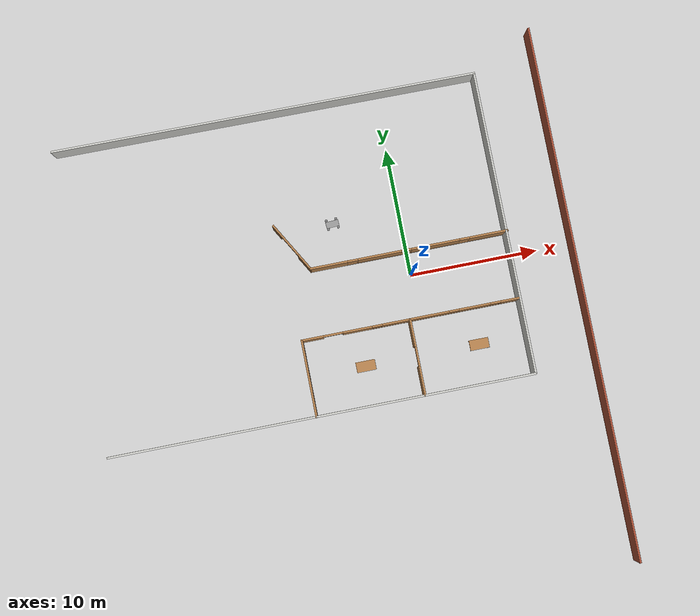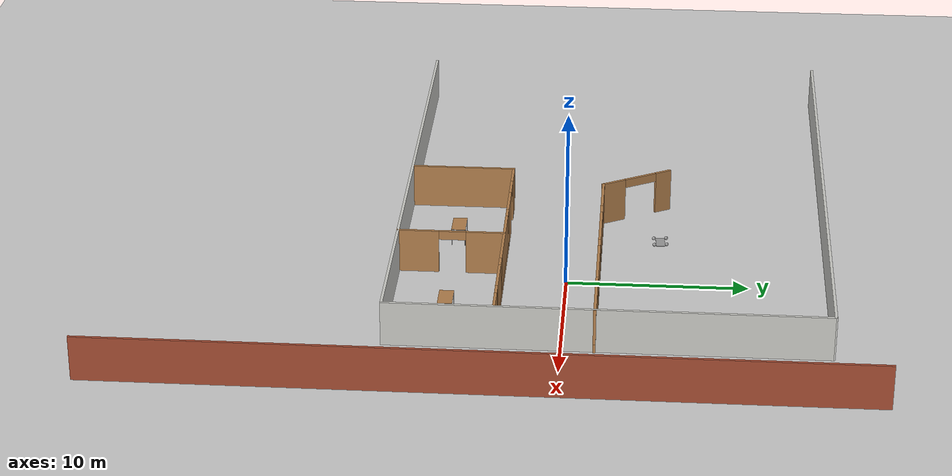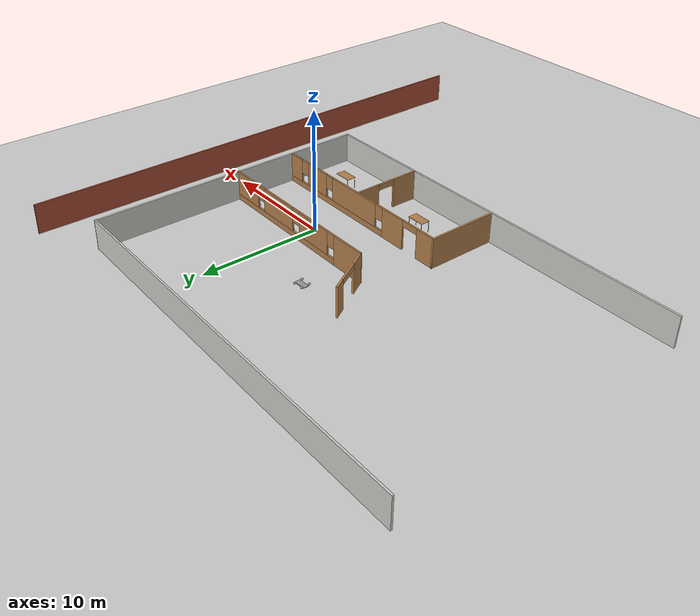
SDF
<sdf version="1.6">
 <world name="default">
  <model name="ground_plane">
   <static>1</static>
   <link name="link">
    <collision name="collision">
     <geometry><plane><normal>0 0 1</normal><size>100 100</size></plane></geometry>
     <surface>
      <contact><collide_bitmask>65535</collide_bitmask></contact>
      <friction><ode><mu>100</mu><mu2>50</mu2></ode></friction>
     </surface>
    </collision>
    <visual name="visual">
     <cast_shadows>0</cast_shadows>
     <geometry><plane><normal>0 0 1</normal><size>100 100</size></plane></geometry>
     <material>
      <script><uri>file://media/materials/scripts/gazebo.material</uri><name>Gazebo/Grey</name></script>
     </material>
    </visual>
   </link>
  </model>
  <model name="bigHouse">
   <pose>-26.8831 -3.8622 0 0 -0 0</pose>
   <link name="Wall_13">
    <pose>26.0111 0.377542 0 0 -0 0</pose>
    <visual name="Wall_13_Visual_0">
     <pose>-7.61414 0 1.25 0 -0 0</pose>
     <geometry><box><size>1.77173 0.15 2.5</size></box></geometry>
     <material>
      <script><uri>file://media/materials/scripts/gazebo.material</uri><name>Gazebo/Wood</name></script>
      <ambient>1 1 1 1</ambient>
     </material>
     <meta><layer>0</layer></meta>
    </visual>
    <collision name="Wall_13_Collision_0">
     <geometry><box><size>1.77173 0.15 2.5</size></box></geometry>
     <pose>-7.61414 0 1.25 0 -0 0</pose>
    </collision>
    <visual name="Wall_13_Visual_1">
     <pose>-4.09432 0 1.25 0 -0 0</pose>
     <geometry><box><size>2.2679 0.15 2.5</size></box></geometry>
     <material>
      <script><uri>file://media/materials/scripts/gazebo.material</uri><name>Gazebo/Wood</name></script>
      <ambient>1 1 1 1</ambient>
     </material>
     <meta><layer>0</layer></meta>
    </visual>
    <collision name="Wall_13_Collision_1">
     <geometry><box><size>2.2679 0.15 2.5</size></box></geometry>
     <pose>-4.09432 0 1.25 0 -0 0</pose>
    </collision>
    <visual name="Wall_13_Visual_2">
     <pose>2.76981 0 0.25 0 -0 0</pose>
     <geometry><box><size>11.4604 0.15 0.5</size></box></geometry>
     <material>
      <script><uri>file://media/materials/scripts/gazebo.material</uri><name>Gazebo/Wood</name></script>
      <ambient>1 1 1 1</ambient>
     </material>
     <meta><layer>0</layer></meta>
    </visual>
    <collision name="Wall_13_Collision_2">
     <geometry><box><size>11.4604 0.15 0.5</size></box></geometry>
     <pose>2.76981 0 0.25 0 -0 0</pose>
    </collision>
    <visual name="Wall_13_Visual_3">
     <pose>0.433338 0 1.5 0 -0 0</pose>
     <geometry><box><size>5.18743 0.15 2</size></box></geometry>
     <material>
      <script><uri>file://media/materials/scripts/gazebo.material</uri><name>Gazebo/Wood</name></script>
      <ambient>1 1 1 1</ambient>
     </material>
     <meta><layer>0</layer></meta>
    </visual>
    <collision name="Wall_13_Collision_3">
     <geometry><box><size>5.18743 0.15 2</size></box></geometry>
     <pose>0.433338 0 1.5 0 -0 0</pose>
    </collision>
    <visual name="Wall_13_Visual_4">
     <pose>5.04527 0 1.5 0 -0 0</pose>
     <geometry><box><size>2.43645 0.15 2</size></box></geometry>
     <material>
      <script><uri>file://media/materials/scripts/gazebo.material</uri><name>Gazebo/Wood</name></script>
      <ambient>1 1 1 1</ambient>
     </material>
     <meta><layer>0</layer></meta>
    </visual>
    <collision name="Wall_13_Collision_4">
     <geometry><box><size>2.43645 0.15 2</size></box></geometry>
     <pose>5.04527 0 1.5 0 -0 0</pose>
    </collision>
    <visual name="Wall_13_Visual_5">
     <pose>7.78175 0 1.5 0 -0 0</pose>
     <geometry><box><size>1.4365 0.15 2</size></box></geometry>
     <material>
      <script><uri>file://media/materials/scripts/gazebo.material</uri><name>Gazebo/Wood</name></script>
      <ambient>1 1 1 1</ambient>
     </material>
     <meta><layer>0</layer></meta>
    </visual>
    <collision name="Wall_13_Collision_5">
     <geometry><box><size>1.4365 0.15 2</size></box></geometry>
     <pose>7.78175 0 1.5 0 -0 0</pose>
    </collision>
    <visual name="Wall_13_Visual_6">
     <pose>-2.56038 0 1.9 0 -0 0</pose>
     <geometry><box><size>0.8 0.15 1.2</size></box></geometry>
     <material>
      <script><uri>file://media/materials/scripts/gazebo.material</uri><name>Gazebo/Wood</name></script>
      <ambient>1 1 1 1</ambient>
     </material>
     <meta><layer>0</layer></meta>
    </visual>
    <collision name="Wall_13_Collision_6">
     <geometry><box><size>0.8 0.15 1.2</size></box></geometry>
     <pose>-2.56038 0 1.9 0 -0 0</pose>
    </collision>
    <visual name="Wall_13_Visual_7">
     <pose>3.42705 0 1.9 0 -0 0</pose>
     <geometry><box><size>0.8 0.15 1.2</size></box></geometry>
     <material>
      <script><uri>file://media/materials/scripts/gazebo.material</uri><name>Gazebo/Wood</name></script>
      <ambient>1 1 1 1</ambient>
     </material>
     <meta><layer>0</layer></meta>
    </visual>
    <collision name="Wall_13_Collision_7">
     <geometry><box><size>0.8 0.15 1.2</size></box></geometry>
     <pose>3.42705 0 1.9 0 -0 0</pose>
    </collision>
    <visual name="Wall_13_Visual_8">
     <pose>6.6635 0 1.9 0 -0 0</pose>
     <geometry><box><size>0.8 0.15 1.2</size></box></geometry>
     <material>
      <script><uri>file://media/materials/scripts/gazebo.material</uri><name>Gazebo/Wood</name></script>
      <ambient>1 1 1 1</ambient>
     </material>
     <meta><layer>0</layer></meta>
    </visual>
    <collision name="Wall_13_Collision_8">
     <geometry><box><size>0.8 0.15 1.2</size></box></geometry>
     <pose>6.6635 0 1.9 0 -0 0</pose>
    </collision>
    <visual name="Wall_13_Visual_9">
     <pose>-5.97827 0 2.25 0 -0 0</pose>
     <geometry><box><size>1.5 0.15 0.5</size></box></geometry>
     <material>
      <script><uri>file://media/materials/scripts/gazebo.material</uri><name>Gazebo/Wood</name></script>
      <ambient>1 1 1 1</ambient>
     </material>
     <meta><layer>0</layer></meta>
    </visual>
    <collision name="Wall_13_Collision_9">
     <geometry><box><size>1.5 0.15 0.5</size></box></geometry>
     <pose>-5.97827 0 2.25 0 -0 0</pose>
    </collision>
   </link>
   <link name="Wall_15">
    <collision name="Wall_15_Collision">
     <geometry><box><size>6.06003 0.15 2.5</size></box></geometry>
     <pose>0 0 1.25 0 -0 0</pose>
    </collision>
    <visual name="Wall_15_Visual">
     <pose>0 0 1.25 0 -0 0</pose>
     <geometry><box><size>6.06003 0.15 2.5</size></box></geometry>
     <material>
      <script><uri>file://media/materials/scripts/gazebo.material</uri><name>Gazebo/Wood</name></script>
      <ambient>1 1 1 1</ambient>
     </material>
     <meta><layer>0</layer></meta>
    </visual>
    <pose>17.5861 -2.57747 0 0 -0 1.5708</pose>
   </link>
   <link name="Wall_18">
    <pose>18.2159 7.5266 0 0 0 -1.0472</pose>
    <visual name="Wall_18_Visual_0">
     <pose>-1.74861 0 1.25 0 -0 0</pose>
     <geometry><box><size>1.00278 0.15 2.5</size></box></geometry>
     <material>
      <script><uri>file://media/materials/scripts/gazebo.material</uri><name>Gazebo/Wood</name></script>
      <ambient>1 1 1 1</ambient>
     </material>
     <meta><layer>0</layer></meta>
    </visual>
    <collision name="Wall_18_Collision_0">
     <geometry><box><size>1.00278 0.15 2.5</size></box></geometry>
     <pose>-1.74861 0 1.25 0 -0 0</pose>
    </collision>
    <visual name="Wall_18_Visual_1">
     <pose>1.50139 0 1.25 0 -0 0</pose>
     <geometry><box><size>1.49722 0.15 2.5</size></box></geometry>
     <material>
      <script><uri>file://media/materials/scripts/gazebo.material</uri><name>Gazebo/Wood</name></script>
      <ambient>1 1 1 1</ambient>
     </material>
     <meta><layer>0</layer></meta>
    </visual>
    <collision name="Wall_18_Collision_1">
     <geometry><box><size>1.49722 0.15 2.5</size></box></geometry>
     <pose>1.50139 0 1.25 0 -0 0</pose>
    </collision>
    <visual name="Wall_18_Visual_2">
     <pose>-0.247217 0 2.25 0 -0 0</pose>
     <geometry><box><size>2 0.15 0.5</size></box></geometry>
     <material>
      <script><uri>file://media/materials/scripts/gazebo.material</uri><name>Gazebo/Wood</name></script>
      <ambient>1 1 1 1</ambient>
     </material>
     <meta><layer>0</layer></meta>
    </visual>
    <collision name="Wall_18_Collision_2">
     <geometry><box><size>2 0.15 0.5</size></box></geometry>
     <pose>-0.247217 0 2.25 0 -0 0</pose>
    </collision>
   </link>
   <link name="Wall_19">
    <pose>26.9784 5.643 0 0 -0 0</pose>
    <visual name="Wall_19_Visual_0">
     <pose>-6.27032 0 1.25 0 -0 0</pose>
     <geometry><box><size>2.95935 0.15 2.5</size></box></geometry>
     <material>
      <script><uri>file://media/materials/scripts/gazebo.material</uri><name>Gazebo/Wood</name></script>
      <ambient>1 1 1 1</ambient>
     </material>
     <meta><layer>0</layer></meta>
    </visual>
    <collision name="Wall_19_Collision_0">
     <geometry><box><size>2.95935 0.15 2.5</size></box></geometry>
     <pose>-6.27032 0 1.25 0 -0 0</pose>
    </collision>
    <visual name="Wall_19_Visual_1">
     <pose>1.47968 0 0.25 0 -0 0</pose>
     <geometry><box><size>12.5406 0.15 0.5</size></box></geometry>
     <material>
      <script><uri>file://media/materials/scripts/gazebo.material</uri><name>Gazebo/Wood</name></script>
      <ambient>1 1 1 1</ambient>
     </material>
     <meta><layer>0</layer></meta>
    </visual>
    <collision name="Wall_19_Collision_1">
     <geometry><box><size>12.5406 0.15 0.5</size></box></geometry>
     <pose>1.47968 0 0.25 0 -0 0</pose>
    </collision>
    <visual name="Wall_19_Visual_2">
     <pose>-2.28696 0 1.5 0 -0 0</pose>
     <geometry><box><size>3.40738 0.15 2</size></box></geometry>
     <material>
      <script><uri>file://media/materials/scripts/gazebo.material</uri><name>Gazebo/Wood</name></script>
      <ambient>1 1 1 1</ambient>
     </material>
     <meta><layer>0</layer></meta>
    </visual>
    <collision name="Wall_19_Collision_2">
     <geometry><box><size>3.40738 0.15 2</size></box></geometry>
     <pose>-2.28696 0 1.5 0 -0 0</pose>
    </collision>
    <visual name="Wall_19_Visual_3">
     <pose>2.08224 0 1.5 0 -0 0</pose>
     <geometry><box><size>3.73102 0.15 2</size></box></geometry>
     <material>
      <script><uri>file://media/materials/scripts/gazebo.material</uri><name>Gazebo/Wood</name></script>
      <ambient>1 1 1 1</ambient>
     </material>
     <meta><layer>0</layer></meta>
    </visual>
    <collision name="Wall_19_Collision_3">
     <geometry><box><size>3.73102 0.15 2</size></box></geometry>
     <pose>2.08224 0 1.5 0 -0 0</pose>
    </collision>
    <visual name="Wall_19_Visual_4">
     <pose>6.24888 0 1.5 0 -0 0</pose>
     <geometry><box><size>3.00224 0.15 2</size></box></geometry>
     <material>
      <script><uri>file://media/materials/scripts/gazebo.material</uri><name>Gazebo/Wood</name></script>
      <ambient>1 1 1 1</ambient>
     </material>
     <meta><layer>0</layer></meta>
    </visual>
    <collision name="Wall_19_Collision_4">
     <geometry><box><size>3.00224 0.15 2</size></box></geometry>
     <pose>6.24888 0 1.5 0 -0 0</pose>
    </collision>
    <visual name="Wall_19_Visual_5">
     <pose>-4.39065 0 1.9 0 -0 0</pose>
     <geometry><box><size>0.8 0.15 1.2</size></box></geometry>
     <material>
      <script><uri>file://media/materials/scripts/gazebo.material</uri><name>Gazebo/Wood</name></script>
      <ambient>1 1 1 1</ambient>
     </material>
     <meta><layer>0</layer></meta>
    </visual>
    <collision name="Wall_19_Collision_5">
     <geometry><box><size>0.8 0.15 1.2</size></box></geometry>
     <pose>-4.39065 0 1.9 0 -0 0</pose>
    </collision>
    <visual name="Wall_19_Visual_6">
     <pose>-0.183267 0 1.9 0 -0 0</pose>
     <geometry><box><size>0.8 0.15 1.2</size></box></geometry>
     <material>
      <script><uri>file://media/materials/scripts/gazebo.material</uri><name>Gazebo/Wood</name></script>
      <ambient>1 1 1 1</ambient>
     </material>
     <meta><layer>0</layer></meta>
    </visual>
    <collision name="Wall_19_Collision_6">
     <geometry><box><size>0.8 0.15 1.2</size></box></geometry>
     <pose>-0.183267 0 1.9 0 -0 0</pose>
    </collision>
    <visual name="Wall_19_Visual_7">
     <pose>4.34776 0 1.9 0 -0 0</pose>
     <geometry><box><size>0.8 0.15 1.2</size></box></geometry>
     <material>
      <script><uri>file://media/materials/scripts/gazebo.material</uri><name>Gazebo/Wood</name></script>
      <ambient>1 1 1 1</ambient>
     </material>
     <meta><layer>0</layer></meta>
    </visual>
    <collision name="Wall_19_Collision_7">
     <geometry><box><size>0.8 0.15 1.2</size></box></geometry>
     <pose>4.34776 0 1.9 0 -0 0</pose>
    </collision>
   </link>
   <link name="Wall_2">
    <collision name="Wall_2_Collision">
     <geometry><box><size>41.75 0.15 2.5</size></box></geometry>
     <pose>0 0 1.25 0 -0 0</pose>
    </collision>
    <visual name="Wall_2_Visual">
     <pose>0 0 1.25 0 -0 0</pose>
     <geometry><box><size>41.75 0.15 2.5</size></box></geometry>
     <material>
      <script><uri>file://media/materials/scripts/gazebo.material</uri><name>Gazebo/Bricks</name></script>
      <ambient>1 1 1 1</ambient>
     </material>
     <meta><layer>0</layer></meta>
    </visual>
    <pose>39.425 -0.125117 0 0 -0 1.5708</pose>
   </link>
   <link name="Wall_21">
    <pose>26.016 -2.57919 0 0 0 -1.5708</pose>
    <visual name="Wall_21_Visual_0">
     <pose>-1.91882 0 1.25 0 -0 0</pose>
     <geometry><box><size>2.16235 0.15 2.5</size></box></geometry>
     <material>
      <script><uri>file://media/materials/scripts/gazebo.material</uri><name>Gazebo/Wood</name></script>
      <ambient>1 1 1 1</ambient>
     </material>
     <meta><layer>0</layer></meta>
    </visual>
    <collision name="Wall_21_Collision_0">
     <geometry><box><size>2.16235 0.15 2.5</size></box></geometry>
     <pose>-1.91882 0 1.25 0 -0 0</pose>
    </collision>
    <visual name="Wall_21_Visual_1">
     <pose>1.83118 0 1.25 0 -0 0</pose>
     <geometry><box><size>2.33765 0.15 2.5</size></box></geometry>
     <material>
      <script><uri>file://media/materials/scripts/gazebo.material</uri><name>Gazebo/Wood</name></script>
      <ambient>1 1 1 1</ambient>
     </material>
     <meta><layer>0</layer></meta>
    </visual>
    <collision name="Wall_21_Collision_1">
     <geometry><box><size>2.33765 0.15 2.5</size></box></geometry>
     <pose>1.83118 0 1.25 0 -0 0</pose>
    </collision>
    <visual name="Wall_21_Visual_2">
     <pose>-0.087646 0 2.25 0 -0 0</pose>
     <geometry><box><size>1.5 0.15 0.5</size></box></geometry>
     <material>
      <script><uri>file://media/materials/scripts/gazebo.material</uri><name>Gazebo/Wood</name></script>
      <ambient>1 1 1 1</ambient>
     </material>
     <meta><layer>0</layer></meta>
    </visual>
    <collision name="Wall_21_Collision_2">
     <geometry><box><size>1.5 0.15 0.5</size></box></geometry>
     <pose>-0.087646 0 2.25 0 -0 0</pose>
    </collision>
   </link>
   <link name="Wall_6">
    <collision name="Wall_6_Collision">
     <geometry><box><size>33.25 0.15 2.5</size></box></geometry>
     <pose>0 0 1.25 0 -0 0</pose>
    </collision>
    <visual name="Wall_6_Visual">
     <pose>0 0 1.25 0 -0 0</pose>
     <geometry><box><size>33.25 0.15 2.5</size></box></geometry>
     <material>
      <script><uri>file://media/materials/scripts/gazebo.material</uri><name>Gazebo/CeilingTiled</name></script>
      <ambient>1 1 1 1</ambient>
     </material>
     <meta><layer>0</layer></meta>
    </visual>
    <pose>18.0322 -5.51252 0 0 -0 0</pose>
   </link>
   <link name="Wall_7">
    <collision name="Wall_7_Collision">
     <geometry><box><size>23.75 0.15 2.5</size></box></geometry>
     <pose>0 0 1.25 0 -0 0</pose>
    </collision>
    <visual name="Wall_7_Visual">
     <pose>0 0 1.25 0 -0 0</pose>
     <geometry><box><size>23.75 0.15 2.5</size></box></geometry>
     <material>
      <script><uri>file://media/materials/scripts/gazebo.material</uri><name>Gazebo/CeilingTiled</name></script>
      <ambient>1 1 1 1</ambient>
     </material>
     <meta><layer>0</layer></meta>
    </visual>
    <pose>34.5822 6.28748 0 0 -0 1.5708</pose>
   </link>
   <link name="Wall_8">
    <collision name="Wall_8_Collision">
     <geometry><box><size>33.2509 0.15 2.5</size></box></geometry>
     <pose>0 0 1.25 0 -0 0</pose>
    </collision>
    <visual name="Wall_8_Visual">
     <pose>0 0 1.25 0 -0 0</pose>
     <geometry><box><size>33.2509 0.15 2.5</size></box></geometry>
     <material>
      <script><uri>file://media/materials/scripts/gazebo.material</uri><name>Gazebo/CeilingTiled</name></script>
      <ambient>1 1 1 1</ambient>
     </material>
     <meta><layer>0</layer></meta>
    </visual>
    <pose>18.0322 18.2125 0 0 -0 3.13404</pose>
   </link>
   <static>1</static>
  </model>
  <model name="table">
   <static>1</static>
   <link name="link">
    <collision name="surface">
     <pose>0 0 1 0 -0 0</pose>
     <geometry><box><size>1.5 0.8 0.03</size></box></geometry>
     <surface><friction><ode><mu>0.6</mu><mu2>0.6</mu2></ode></friction></surface>
    </collision>
    <visual name="visual1">
     <pose>0 0 1 0 -0 0</pose>
     <geometry><box><size>1.5 0.8 0.03</size></box></geometry>
     <material>
      <script><uri>file://media/materials/scripts/gazebo.material</uri><name>Gazebo/Wood</name></script>
     </material>
    </visual>
    <collision name="front_left_leg">
     <pose>0.68 0.38 0.5 0 -0 0</pose>
     <geometry><cylinder><radius>0.02</radius><length>1</length></cylinder></geometry>
    </collision>
    <visual name="front_left_leg">
     <pose>0.68 0.38 0.5 0 -0 0</pose>
     <geometry><cylinder><radius>0.02</radius><length>1</length></cylinder></geometry>
     <material>
      <script><uri>file://media/materials/scripts/gazebo.material</uri><name>Gazebo/Grey</name></script>
     </material>
    </visual>
    <collision name="front_right_leg">
     <pose>0.68 -0.38 0.5 0 -0 0</pose>
     <geometry><cylinder><radius>0.02</radius><length>1</length></cylinder></geometry>
    </collision>
    <visual name="front_right_leg">
     <pose>0.68 -0.38 0.5 0 -0 0</pose>
     <geometry><cylinder><radius>0.02</radius><length>1</length></cylinder></geometry>
     <material>
      <script><uri>file://media/materials/scripts/gazebo.material</uri><name>Gazebo/Grey</name></script>
     </material>
    </visual>
    <collision name="back_right_leg">
     <pose>-0.68 -0.38 0.5 0 -0 0</pose>
     <geometry><cylinder><radius>0.02</radius><length>1</length></cylinder></geometry>
    </collision>
    <visual name="back_right_leg">
     <pose>-0.68 -0.38 0.5 0 -0 0</pose>
     <geometry><cylinder><radius>0.02</radius><length>1</length></cylinder></geometry>
     <material>
      <script><uri>file://media/materials/scripts/gazebo.material</uri><name>Gazebo/Grey</name></script>
     </material>
    </visual>
    <collision name="back_left_leg">
     <pose>-0.68 0.38 0.5 0 -0 0</pose>
     <geometry><cylinder><radius>0.02</radius><length>1</length></cylinder></geometry>
    </collision>
    <visual name="back_left_leg">
     <pose>-0.68 0.38 0.5 0 -0 0</pose>
     <geometry><cylinder><radius>0.02</radius><length>1</length></cylinder></geometry>
     <material>
      <script><uri>file://media/materials/scripts/gazebo.material</uri><name>Gazebo/Grey</name></script>
     </material>
    </visual>
   </link>
   <pose>-4.83759 -6.28912 0 0 -0 0</pose>
  </model>
  <model name="table_0">
   <static>1</static>
   <link name="link">
    <collision name="surface">
     <pose>0 0 1 0 -0 0</pose>
     <geometry><box><size>1.5 0.8 0.03</size></box></geometry>
     <surface><friction><ode><mu>0.6</mu><mu2>0.6</mu2></ode></friction></surface>
    </collision>
    <visual name="visual1">
     <pose>0 0 1 0 -0 0</pose>
     <geometry><box><size>1.5 0.8 0.03</size></box></geometry>
     <material>
      <script><uri>file://media/materials/scripts/gazebo.material</uri><name>Gazebo/Wood</name></script>
     </material>
    </visual>
    <collision name="front_left_leg">
     <pose>0.68 0.38 0.5 0 -0 0</pose>
     <geometry><cylinder><radius>0.02</radius><length>1</length></cylinder></geometry>
    </collision>
    <visual name="front_left_leg">
     <pose>0.68 0.38 0.5 0 -0 0</pose>
     <geometry><cylinder><radius>0.02</radius><length>1</length></cylinder></geometry>
     <material>
      <script><uri>file://media/materials/scripts/gazebo.material</uri><name>Gazebo/Grey</name></script>
     </material>
    </visual>
    <collision name="front_right_leg">
     <pose>0.68 -0.38 0.5 0 -0 0</pose>
     <geometry><cylinder><radius>0.02</radius><length>1</length></cylinder></geometry>
    </collision>
    <visual name="front_right_leg">
     <pose>0.68 -0.38 0.5 0 -0 0</pose>
     <geometry><cylinder><radius>0.02</radius><length>1</length></cylinder></geometry>
     <material>
      <script><uri>file://media/materials/scripts/gazebo.material</uri><name>Gazebo/Grey</name></script>
     </material>
    </visual>
    <collision name="back_right_leg">
     <pose>-0.68 -0.38 0.5 0 -0 0</pose>
     <geometry><cylinder><radius>0.02</radius><length>1</length></cylinder></geometry>
    </collision>
    <visual name="back_right_leg">
     <pose>-0.68 -0.38 0.5 0 -0 0</pose>
     <geometry><cylinder><radius>0.02</radius><length>1</length></cylinder></geometry>
     <material>
      <script><uri>file://media/materials/scripts/gazebo.material</uri><name>Gazebo/Grey</name></script>
     </material>
    </visual>
    <collision name="back_left_leg">
     <pose>-0.68 0.38 0.5 0 -0 0</pose>
     <geometry><cylinder><radius>0.02</radius><length>1</length></cylinder></geometry>
    </collision>
    <visual name="back_left_leg">
     <pose>-0.68 0.38 0.5 0 -0 0</pose>
     <geometry><cylinder><radius>0.02</radius><length>1</length></cylinder></geometry>
     <material>
      <script><uri>file://media/materials/scripts/gazebo.material</uri><name>Gazebo/Grey</name></script>
     </material>
    </visual>
   </link>
   <pose>4.05808 -6.31232 0 0 -0 0</pose>
  </model>
  <model name="funkybot_0">
   <link name="link_0">
    <pose>0.008 0 -0.042 0 -0 0</pose>
    <inertial>
     <mass>1</mass>
     <inertia>
      <ixx>0.166667</ixx>
      <ixy>0</ixy>
      <ixz>0</ixz>
      <iyy>0.166667</iyy>
      <iyz>0</iyz>
      <izz>0.166667</izz>
     </inertia>
    </inertial>
    <visual name="visual">
     <geometry><box><size>1 0.5 0.05</size></box></geometry>
     <material>
      <lighting>1</lighting>
      <script><uri>file://media/materials/scripts/gazebo.material</uri><name>Gazebo/Grey</name></script>
      <shader type="pixel"><normal_map>__default__</normal_map></shader>
      <ambient>0.3 0.3 0.3 1</ambient>
      <diffuse>0.7 0.7 0.7 1</diffuse>
      <specular>0.01 0.01 0.01 1</specular>
      <emissive>0 0 0 1</emissive>
     </material>
    </visual>
    <collision name="collision">
     <geometry><box><size>1 0.5 0.05</size></box></geometry>
     <surface>
      <friction>
       <ode><mu>1</mu><mu2>1</mu2><fdir1>0 0 0</fdir1><slip1>0</slip1><slip2>0</slip2></ode>
       <torsional>
        <coefficient>1</coefficient>
        <patch_radius>0</patch_radius>
        <surface_radius>0</surface_radius>
        <use_patch_radius>1</use_patch_radius>
        <ode><slip>0</slip></ode>
       </torsional>
      </friction>
      <bounce><restitution_coefficient>0</restitution_coefficient><threshold>1e+06</threshold></bounce>
      <contact>
       <collide_without_contact>0</collide_without_contact>
       <collide_without_contact_bitmask>1</collide_without_contact_bitmask>
       <collide_bitmask>1</collide_bitmask>
       <ode>
        <soft_cfm>0</soft_cfm>
        <soft_erp>0.2</soft_erp>
        <kp>1e+13</kp>
        <kd>1</kd>
        <max_vel>0.01</max_vel>
        <min_depth>0</min_depth>
       </ode>
       <bullet>
        <split_impulse>1</split_impulse>
        <split_impulse_penetration_threshold>-0.01</split_impulse_penetration_threshold>
        <soft_cfm>0</soft_cfm>
        <soft_erp>0.2</soft_erp>
        <kp>1e+13</kp>
        <kd>1</kd>
       </bullet>
      </contact>
     </surface>
    </collision>
   </link>
   <link name="link_2">
    <pose>0.368 0.35 -0.0045 0 -0 0</pose>
    <inertial>
     <mass>1</mass>
     <inertia><ixx>0.1</ixx><ixy>0</ixy><ixz>0</ixz><iyy>0.1</iyy><iyz>0</iyz><izz>0.1</izz></inertia>
    </inertial>
    <visual name="visual">
     <geometry><sphere><radius>0.1</radius></sphere></geometry>
     <material>
      <lighting>1</lighting>
      <script><uri>file://media/materials/scripts/gazebo.material</uri><name>Gazebo/Grey</name></script>
      <shader type="pixel"><normal_map>__default__</normal_map></shader>
      <ambient>0.3 0.3 0.3 1</ambient>
      <diffuse>0.7 0.7 0.7 1</diffuse>
      <specular>0.01 0.01 0.01 1</specular>
      <emissive>0 0 0 1</emissive>
     </material>
    </visual>
    <collision name="collision">
     <geometry><sphere><radius>0.1</radius></sphere></geometry>
     <surface>
      <friction>
       <ode><mu>1</mu><mu2>1</mu2><fdir1>0 0 0</fdir1><slip1>0</slip1><slip2>0</slip2></ode>
       <torsional>
        <coefficient>1</coefficient>
        <patch_radius>0</patch_radius>
        <surface_radius>0</surface_radius>
        <use_patch_radius>1</use_patch_radius>
        <ode><slip>0</slip></ode>
       </torsional>
      </friction>
      <bounce><restitution_coefficient>0</restitution_coefficient><threshold>1e+06</threshold></bounce>
      <contact>
       <collide_without_contact>0</collide_without_contact>
       <collide_without_contact_bitmask>1</collide_without_contact_bitmask>
       <collide_bitmask>1</collide_bitmask>
       <ode>
        <soft_cfm>0</soft_cfm>
        <soft_erp>0.2</soft_erp>
        <kp>1e+13</kp>
        <kd>1</kd>
        <max_vel>0.01</max_vel>
        <min_depth>0</min_depth>
       </ode>
       <bullet>
        <split_impulse>1</split_impulse>
        <split_impulse_penetration_threshold>-0.01</split_impulse_penetration_threshold>
        <soft_cfm>0</soft_cfm>
        <soft_erp>0.2</soft_erp>
        <kp>1e+13</kp>
        <kd>1</kd>
       </bullet>
      </contact>
     </surface>
    </collision>
   </link>
   <link name="link_2_clone">
    <pose>-0.392 0.35 0.0155 0 -0 0</pose>
    <inertial>
     <mass>1</mass>
     <inertia><ixx>0.1</ixx><ixy>0</ixy><ixz>0</ixz><iyy>0.1</iyy><iyz>0</iyz><izz>0.1</izz></inertia>
    </inertial>
    <visual name="visual">
     <geometry><sphere><radius>0.1</radius></sphere></geometry>
     <material>
      <lighting>1</lighting>
      <script><uri>file://media/materials/scripts/gazebo.material</uri><name>Gazebo/Grey</name></script>
      <shader type="pixel"><normal_map>__default__</normal_map></shader>
      <ambient>0.3 0.3 0.3 1</ambient>
      <diffuse>0.7 0.7 0.7 1</diffuse>
      <specular>0.01 0.01 0.01 1</specular>
      <emissive>0 0 0 1</emissive>
     </material>
    </visual>
    <collision name="collision">
     <geometry><sphere><radius>0.1</radius></sphere></geometry>
     <surface>
      <friction>
       <ode><mu>1</mu><mu2>1</mu2><fdir1>0 0 0</fdir1><slip1>0</slip1><slip2>0</slip2></ode>
       <torsional>
        <coefficient>1</coefficient>
        <patch_radius>0</patch_radius>
        <surface_radius>0</surface_radius>
        <use_patch_radius>1</use_patch_radius>
        <ode><slip>0</slip></ode>
       </torsional>
      </friction>
      <bounce><restitution_coefficient>0</restitution_coefficient><threshold>1e+06</threshold></bounce>
      <contact>
       <collide_without_contact>0</collide_without_contact>
       <collide_without_contact_bitmask>1</collide_without_contact_bitmask>
       <collide_bitmask>1</collide_bitmask>
       <ode>
        <soft_cfm>0</soft_cfm>
        <soft_erp>0.2</soft_erp>
        <kp>1e+13</kp>
        <kd>1</kd>
        <max_vel>0.01</max_vel>
        <min_depth>0</min_depth>
       </ode>
       <bullet>
        <split_impulse>1</split_impulse>
        <split_impulse_penetration_threshold>-0.01</split_impulse_penetration_threshold>
        <soft_cfm>0</soft_cfm>
        <soft_erp>0.2</soft_erp>
        <kp>1e+13</kp>
        <kd>1</kd>
       </bullet>
      </contact>
     </surface>
    </collision>
   </link>
   <link name="link_2_clone_0">
    <pose>-0.392 -0.35 0.0155 0 -0 0</pose>
    <inertial>
     <mass>1</mass>
     <inertia><ixx>0.1</ixx><ixy>0</ixy><ixz>0</ixz><iyy>0.1</iyy><iyz>0</iyz><izz>0.1</izz></inertia>
    </inertial>
    <visual name="visual">
     <geometry><sphere><radius>0.1</radius></sphere></geometry>
     <material>
      <lighting>1</lighting>
      <script><uri>file://media/materials/scripts/gazebo.material</uri><name>Gazebo/Grey</name></script>
      <shader type="pixel"><normal_map>__default__</normal_map></shader>
      <ambient>0.3 0.3 0.3 1</ambient>
      <diffuse>0.7 0.7 0.7 1</diffuse>
      <specular>0.01 0.01 0.01 1</specular>
      <emissive>0 0 0 1</emissive>
     </material>
    </visual>
    <collision name="collision">
     <geometry><sphere><radius>0.1</radius></sphere></geometry>
     <surface>
      <friction>
       <ode><mu>1</mu><mu2>1</mu2><fdir1>0 0 0</fdir1><slip1>0</slip1><slip2>0</slip2></ode>
       <torsional>
        <coefficient>1</coefficient>
        <patch_radius>0</patch_radius>
        <surface_radius>0</surface_radius>
        <use_patch_radius>1</use_patch_radius>
        <ode><slip>0</slip></ode>
       </torsional>
      </friction>
      <bounce><restitution_coefficient>0</restitution_coefficient><threshold>1e+06</threshold></bounce>
      <contact>
       <collide_without_contact>0</collide_without_contact>
       <collide_without_contact_bitmask>1</collide_without_contact_bitmask>
       <collide_bitmask>1</collide_bitmask>
       <ode>
        <soft_cfm>0</soft_cfm>
        <soft_erp>0.2</soft_erp>
        <kp>1e+13</kp>
        <kd>1</kd>
        <max_vel>0.01</max_vel>
        <min_depth>0</min_depth>
       </ode>
       <bullet>
        <split_impulse>1</split_impulse>
        <split_impulse_penetration_threshold>-0.01</split_impulse_penetration_threshold>
        <soft_cfm>0</soft_cfm>
        <soft_erp>0.2</soft_erp>
        <kp>1e+13</kp>
        <kd>1</kd>
       </bullet>
      </contact>
     </surface>
    </collision>
   </link>
   <link name="link_2_clone_1">
    <pose>0.408 -0.35 0.0155 0 -0 0</pose>
    <inertial>
     <mass>1</mass>
     <inertia><ixx>0.1</ixx><ixy>0</ixy><ixz>0</ixz><iyy>0.1</iyy><iyz>0</iyz><izz>0.1</izz></inertia>
    </inertial>
    <visual name="visual">
     <geometry><sphere><radius>0.1</radius></sphere></geometry>
     <material>
      <lighting>1</lighting>
      <script><uri>file://media/materials/scripts/gazebo.material</uri><name>Gazebo/Grey</name></script>
      <shader type="pixel"><normal_map>__default__</normal_map></shader>
      <ambient>0.3 0.3 0.3 1</ambient>
      <diffuse>0.7 0.7 0.7 1</diffuse>
      <specular>0.01 0.01 0.01 1</specular>
      <emissive>0 0 0 1</emissive>
     </material>
    </visual>
    <collision name="collision">
     <geometry><sphere><radius>0.1</radius></sphere></geometry>
     <surface>
      <friction>
       <ode><mu>1</mu><mu2>1</mu2><fdir1>0 0 0</fdir1><slip1>0</slip1><slip2>0</slip2></ode>
       <torsional>
        <coefficient>1</coefficient>
        <patch_radius>0</patch_radius>
        <surface_radius>0</surface_radius>
        <use_patch_radius>1</use_patch_radius>
        <ode><slip>0</slip></ode>
       </torsional>
      </friction>
      <bounce><restitution_coefficient>0</restitution_coefficient><threshold>1e+06</threshold></bounce>
      <contact>
       <collide_without_contact>0</collide_without_contact>
       <collide_without_contact_bitmask>1</collide_without_contact_bitmask>
       <collide_bitmask>1</collide_bitmask>
       <ode>
        <soft_cfm>0</soft_cfm>
        <soft_erp>0.2</soft_erp>
        <kp>1e+13</kp>
        <kd>1</kd>
        <max_vel>0.01</max_vel>
        <min_depth>0</min_depth>
       </ode>
       <bullet>
        <split_impulse>1</split_impulse>
        <split_impulse_penetration_threshold>-0.01</split_impulse_penetration_threshold>
        <soft_cfm>0</soft_cfm>
        <soft_erp>0.2</soft_erp>
        <kp>1e+13</kp>
        <kd>1</kd>
       </bullet>
      </contact>
     </surface>
    </collision>
   </link>
   <joint name="link_0_JOINT_0" type="revolute">
    <parent>link_0</parent>
    <child>link_2_clone_1</child>
    <axis>
     <xyz>0 1 0</xyz>
     <use_parent_model_frame>0</use_parent_model_frame>
     <limit>
      <lower>-1.79769e+308</lower>
      <upper>1.79769e+308</upper>
      <effort>-1</effort>
      <velocity>-1</velocity>
     </limit>
     <dynamics>
      <spring_reference>0</spring_reference>
      <spring_stiffness>0</spring_stiffness>
      <damping>0</damping>
     </dynamics>
    </axis>
    <physics>
     <ode><limit><cfm>0</cfm><erp>0.2</erp></limit><suspension><cfm>0</cfm><erp>0.2</erp></suspension></ode>
    </physics>
   </joint>
   <joint name="link_0_JOINT_1" type="revolute">
    <parent>link_0</parent>
    <child>link_2_clone_0</child>
    <axis>
     <xyz>0 1 0</xyz>
     <use_parent_model_frame>0</use_parent_model_frame>
     <limit>
      <lower>-1.79769e+308</lower>
      <upper>1.79769e+308</upper>
      <effort>-1</effort>
      <velocity>-1</velocity>
     </limit>
     <dynamics>
      <spring_reference>0</spring_reference>
      <spring_stiffness>0</spring_stiffness>
      <damping>0</damping>
     </dynamics>
    </axis>
    <physics>
     <ode><limit><cfm>0</cfm><erp>0.2</erp></limit><suspension><cfm>0</cfm><erp>0.2</erp></suspension></ode>
    </physics>
   </joint>
   <joint name="link_0_JOINT_2" type="revolute">
    <parent>link_0</parent>
    <child>link_2_clone</child>
    <axis>
     <xyz>0 0 1</xyz>
     <use_parent_model_frame>0</use_parent_model_frame>
     <limit>
      <lower>-1.79769e+308</lower>
      <upper>1.79769e+308</upper>
      <effort>-1</effort>
      <velocity>-1</velocity>
     </limit>
     <dynamics>
      <spring_reference>0</spring_reference>
      <spring_stiffness>0</spring_stiffness>
      <damping>0</damping>
     </dynamics>
    </axis>
    <physics>
     <ode><limit><cfm>0</cfm><erp>0.2</erp></limit><suspension><cfm>0</cfm><erp>0.2</erp></suspension></ode>
    </physics>
   </joint>
   <joint name="link_0_JOINT_4" type="revolute">
    <parent>link_0</parent>
    <child>link_2</child>
    <axis>
     <xyz>1 0 0</xyz>
     <use_parent_model_frame>0</use_parent_model_frame>
     <limit>
      <lower>-1.79769e+308</lower>
      <upper>1.79769e+308</upper>
      <effort>-1</effort>
      <velocity>-1</velocity>
     </limit>
     <dynamics>
      <spring_reference>0</spring_reference>
      <spring_stiffness>0</spring_stiffness>
      <damping>0</damping>
     </dynamics>
    </axis>
    <physics>
     <ode><limit><cfm>0</cfm><erp>0.2</erp></limit><suspension><cfm>0</cfm><erp>0.2</erp></suspension></ode>
    </physics>
   </joint>
   <static>0</static>
   <pose>-5.25654 5.12727 0.094498 0.02852 -5.4e-05 0.062066</pose>
  </model>
 </world>
</sdf>
